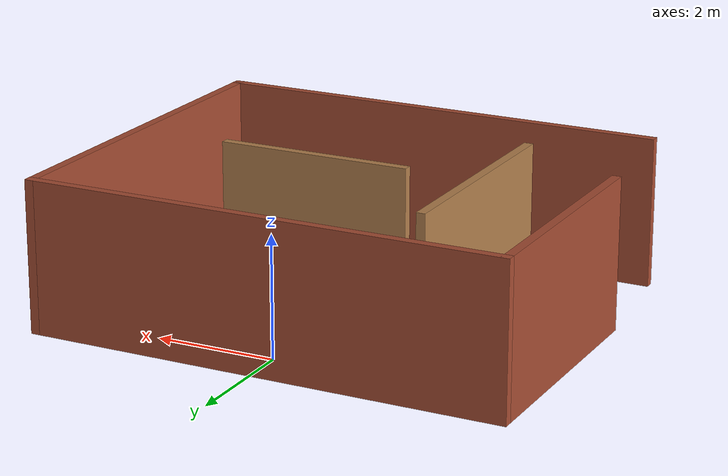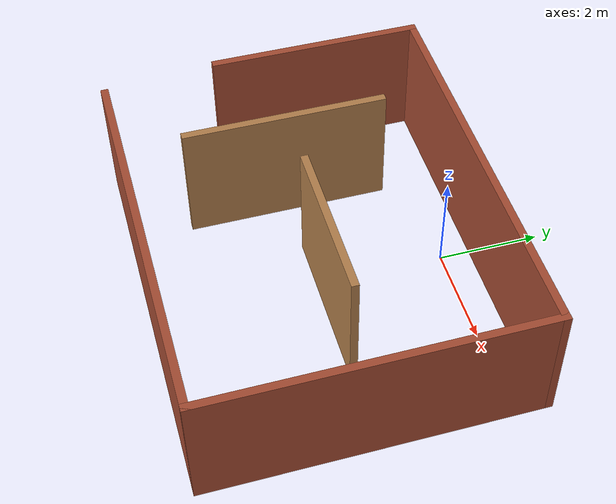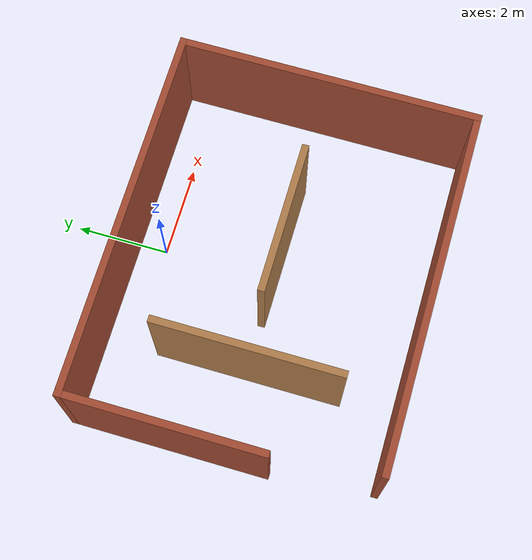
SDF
<?xml version='1.0'?>
<sdf version='1.7'>
  <model name='maze'>
    <pose>-0.136651 -2.51966 0 0 -0 0</pose>
    <link name='Wall_12'>
      <collision name='Wall_12_Collision'>
        <geometry>
          <box>
            <size>4 0.15 2.5</size>
          </box>
        </geometry>
        <pose>0 0 1.25 0 -0 0</pose>
      </collision>
      <visual name='Wall_12_Visual'>
        <pose>0 0 1.25 0 -0 0</pose>
        <geometry>
          <box>
            <size>4 0.15 2.5</size>
          </box>
        </geometry>
        <material>
          <script>
            <uri>file://media/materials/scripts/gazebo.material</uri>
            <name>Gazebo/Wood</name>
          </script>
          <ambient>1 1 1 1</ambient>
        </material>
        <meta>
          <layer>0</layer>
        </meta>
      </visual>
      <pose>-2.04628 -0.00806 0 0 -0 -1.5708</pose>
    </link>
    <link name='Wall_2'>
      <collision name='Wall_2_Collision'>
        <geometry>
          <box>
            <size>7.75 0.15 2.5</size>
          </box>
        </geometry>
        <pose>0 0 1.25 0 -0 0</pose>
      </collision>
      <visual name='Wall_2_Visual'>
        <pose>0 0 1.25 0 -0 0</pose>
        <geometry>
          <box>
            <size>7.75 0.15 2.5</size>
          </box>
        </geometry>
        <material>
          <script>
            <uri>file://media/materials/scripts/gazebo.material</uri>
            <name>Gazebo/Bricks</name>
          </script>
          <ambient>1 1 1 1</ambient>
        </material>
        <meta>
          <layer>0</layer>
        </meta>
      </visual>
      <pose>0.125 -3.175 0 0 -0 0</pose>
    </link>
    <link name='Wall_3'>
      <collision name='Wall_3_Collision'>
        <geometry>
          <box>
            <size>6.5 0.15 2.5</size>
          </box>
        </geometry>
        <pose>0 0 1.25 0 -0 0</pose>
      </collision>
      <visual name='Wall_3_Visual'>
        <pose>0 0 1.25 0 -0 0</pose>
        <geometry>
          <box>
            <size>6.5 0.15 2.5</size>
          </box>
        </geometry>
        <material>
          <script>
            <uri>file://media/materials/scripts/gazebo.material</uri>
            <name>Gazebo/Bricks</name>
          </script>
          <ambient>1 1 1 1</ambient>
        </material>
        <meta>
          <layer>0</layer>
        </meta>
      </visual>
      <pose>3.925 -0 0 0 -0 1.5708</pose>
    </link>
    <link name='Wall_4'>
      <collision name='Wall_4_Collision'>
        <geometry>
          <box>
            <size>8 0.15 2.5</size>
          </box>
        </geometry>
        <pose>0 0 1.25 0 -0 0</pose>
      </collision>
      <visual name='Wall_4_Visual'>
        <pose>0 0 1.25 0 -0 0</pose>
        <geometry>
          <box>
            <size>8 0.15 2.5</size>
          </box>
        </geometry>
        <material>
          <script>
            <uri>file://media/materials/scripts/gazebo.material</uri>
            <name>Gazebo/Bricks</name>
          </script>
          <ambient>1 1 1 1</ambient>
        </material>
        <meta>
          <layer>0</layer>
        </meta>
      </visual>
      <pose>0 3.175 0 0 -0 3.14159</pose>
    </link>
    <link name='Wall_5'>
      <collision name='Wall_5_Collision'>
        <geometry>
          <box>
            <size>4.25 0.15 2.5</size>
          </box>
        </geometry>
        <pose>0 0 1.25 0 -0 0</pose>
      </collision>
      <visual name='Wall_5_Visual'>
        <pose>0 0 1.25 0 -0 0</pose>
        <geometry>
          <box>
            <size>4.25 0.15 2.5</size>
          </box>
        </geometry>
        <material>
          <script>
            <uri>file://media/materials/scripts/gazebo.material</uri>
            <name>Gazebo/Bricks</name>
          </script>
          <ambient>1 1 1 1</ambient>
        </material>
        <meta>
          <layer>0</layer>
        </meta>
      </visual>
      <pose>-3.925 1.125 0 0 -0 -1.5708</pose>
    </link>
    <link name='Wall_7'>
      <collision name='Wall_7_Collision'>
        <geometry>
          <box>
            <size>3.25 0.15 2.5</size>
          </box>
        </geometry>
        <pose>0 0 1.25 0 -0 0</pose>
      </collision>
      <visual name='Wall_7_Visual'>
        <pose>0 0 1.25 0 -0 0</pose>
        <geometry>
          <box>
            <size>3.25 0.15 2.5</size>
          </box>
        </geometry>
        <material>
          <script>
            <uri>file://media/materials/scripts/gazebo.material</uri>
            <name>Gazebo/Wood</name>
          </script>
          <ambient>1 1 1 1</ambient>
        </material>
        <meta>
          <layer>0</layer>
        </meta>
      </visual>
      <pose>0.719571 0.055437 0 0 -0 0</pose>
    </link>
    <static>1</static>
  </model>
</sdf>
